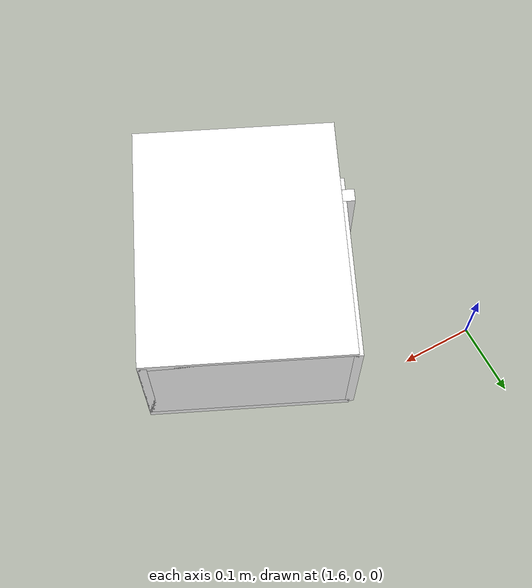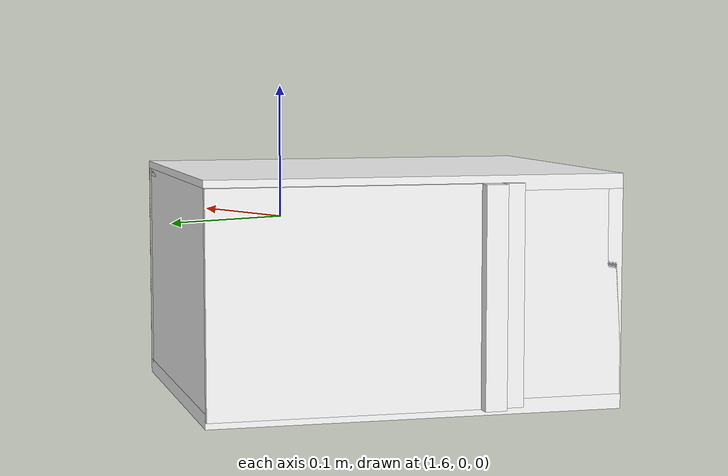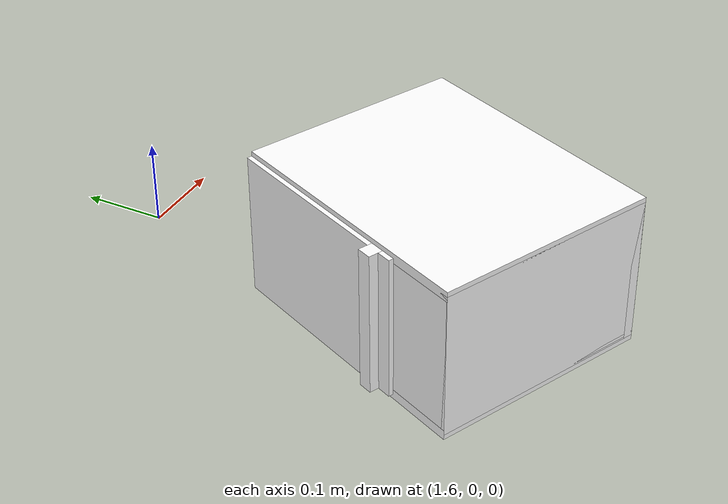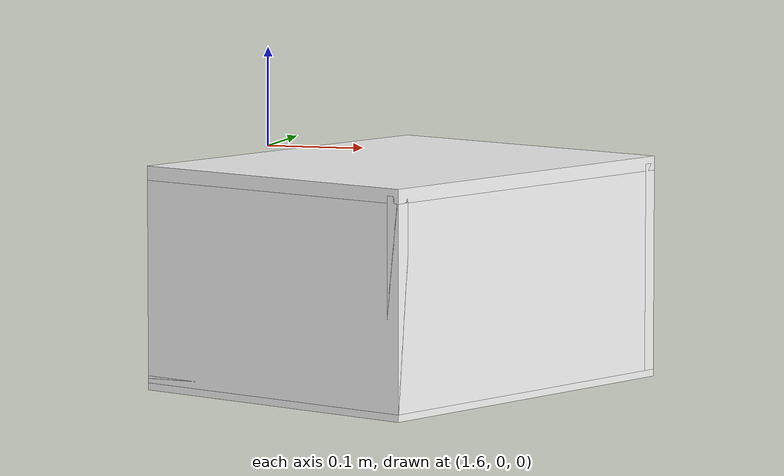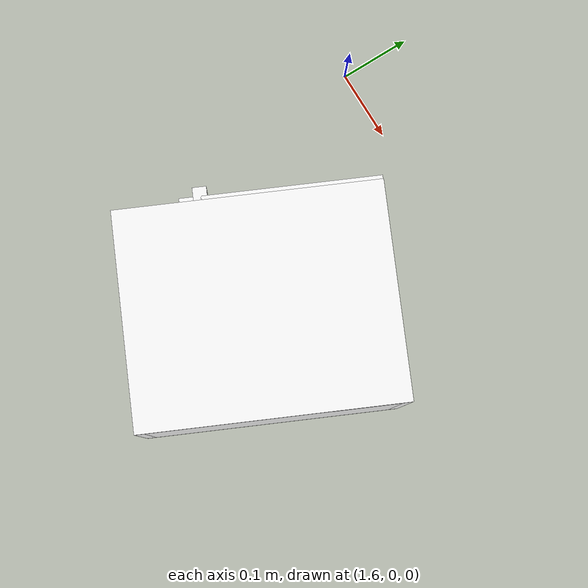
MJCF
<mujoco model="cabinet">
    <compiler angle="radian" eulerseq='zxy' />
    <option gravity = "0 0 0" />
    <option>
        <flag contact = "disable"/>
    </option>
    <statistic	extent="1.0" center="0.0 0.0 0.0"/>
    <visual>
        <map fogstart="3" fogend="5" force="0.1" znear=" 0.100000 " zfar=" 12.000000 "/>
    </visual>
    <size njmax="500" nconmax="100" />
    <actuator>
        <velocity joint="bottom_left_hinge" name="viva_revolution" kv='10'></velocity>
    </actuator>
    <asset>
        <texture builtin="flat" name="tabletex" height="32" width="32" rgb1="1 1 1" type="cube"></texture>
        <texture builtin="flat" name="objtex" height="32" width="32" rgb1="1 1 1" type="cube"></texture>
        <texture builtin="flat" name="handletex" height="32" width="32" rgb1="1 1 1" type="cube"></texture>
        <texture builtin="flat" name="wallpaper" height="32" width="32" rgb1="1 0 0" type="cube"></texture>
        <texture builtin="flat" name="kp" height="32" width="32" rgb1="1 1 1" type="cube"></texture>
        <material name="geomTable" shininess="0.03" specular="0.75" texture="tabletex"></material>
        <material name="geomObj" shininess="0.03" specular="0.75" texture="objtex"></material>
        <material name="geomHandle" shininess="0.03" specular="0.75" texture="handletex"></material>
        <material name="ax" shininess="0.03" specular="0.75" texture="wallpaper"></material>
        <material name="bg" shininess="0.03" specular="0.75" texture="wallpaper"></material>
        <material name="geomKeypad" shininess="0.03" specular="0.75" texture="kp"></material>
    </asset>
    <worldbody>
        <body name="cabinet_bottom" pos= " 1.819203 -0.274339 -0.189354 "  quat= " 0.212727 0.000000 0.000000 0.977112" >
            <inertial pos="0 0 0" mass="1" diaginertia="1 1 1" />
            <geom size= " 0.155984 0.191194 0.006818 "  type="box" material="geomObj" name="b"/>
            <body name="cabinet_left" pos= " 0.000000 -0.184376 0.100476 " >
                <inertial pos="0 0 0" mass="1" diaginertia="1 1 1" />
                <geom size= " 0.155984 0.006818 0.100476 "  type="box" material="geomObj" name="c" />
            </body>
            <body name="cabinet_right" pos= " 0.000000 0.184376 0.100476 " >
                <inertial pos="0 0 0" mass="1" diaginertia="1 1 1" />
                <geom size= " 0.155984 0.006818 0.100476 "  type="box" material="geomObj" name="d" />
            </body>
            <body name="cabinet_top" pos= " 0.000000 0.000000 0.200952 " >
                <inertial pos="0 0 0" mass="1" diaginertia="1 1 1" />
                <geom size= " 0.155984 0.191194 0.006818 "  type="box" material="geomObj" name="e"/>
            </body>
            <body name="cabinet_back" pos= " -0.149166 0.000000 0.100476 "  >
                <inertial pos="0 0 0" mass="1" diaginertia="1 1 1" />
                <geom size= " 0.006818 0.191194 0.100476 "  type="box" material="geomObj" name="f" />
            </body>
            <body name="cabinet_keypad" pos= " 0.006818 0.142396 0.100476 " >
                <inertial pos="0 0 0" mass="1" diaginertia="1 1 1" />
                <geom size= " 0.149166 0.047799 0.093658 "  type="box" material="geomKeypad" name="keypizzlemynizzle" />
            </body>
            <body name="cabinet_left_hinge" pos= " 0.155984 -0.191194 0.100476 " >
                <inertial pos= " 0.000000 0.143396 0.000000 "  mass="1" diaginertia="1 1 1" />
                <joint name="bottom_left_hinge" type="hinge" pos="0 0 0" axis="0 0 1" limited="true" range= "-2.3 0"  />
                <geom size= " 0.006818 0.143396 0.100476 "  pos= " 0.000000 0.143396 0.000000 "  type="box" material="geomObj" name="g"/>
                <body name="handle_link" pos= " 0.010000 0.256791 0.000000 " >
                    <inertial pos="0 0 0" mass="1" diaginertia="1 1 1" />
                    <geom size= " 0.010000 0.010000 0.100476 "  type="box" material="geomHandle" name="h"/>
                </body>
            </body>
        </body>
        <body name="external_camera_body_0" pos="0.0 0 0.00" >
            <camera euler="-1.57 1.57 0.0" fovy=" 54.280851 " name="external_camera_0" pos="0.0 0 0"></camera>
            <inertial pos= " 0.00 0.0 0.000000 " mass="1" diaginertia="1 1 1" />
            <joint name="cam_j" pos="0.0 0 0" axis = "1 0 0" type="free" />
        </body>
    </worldbody>
</mujoco>
